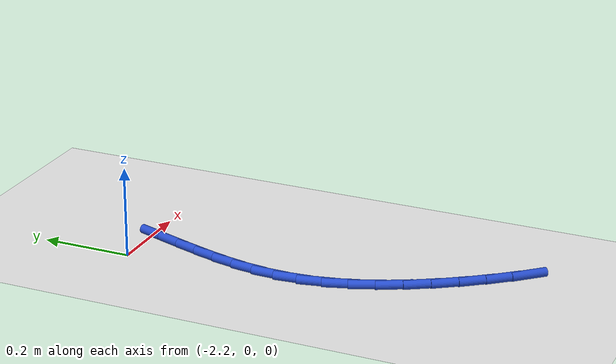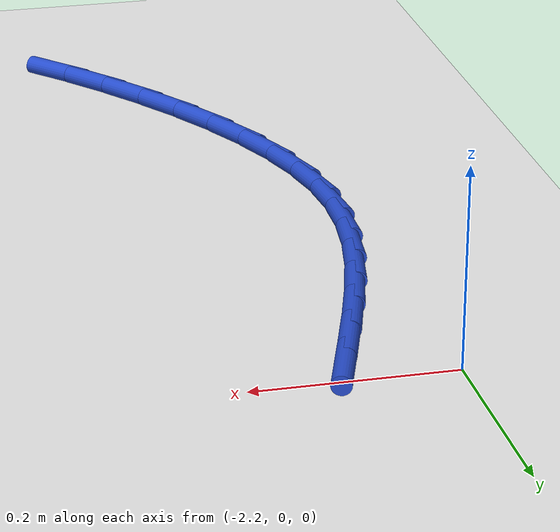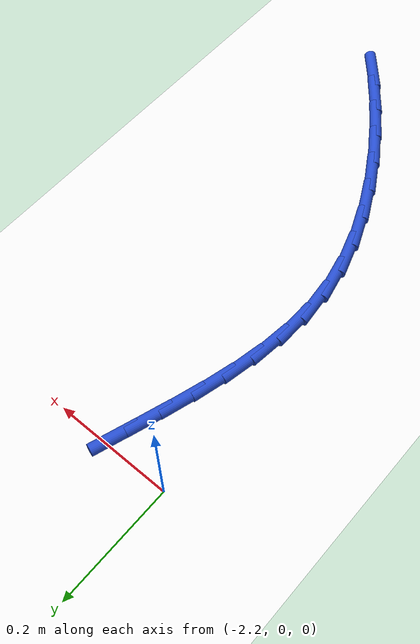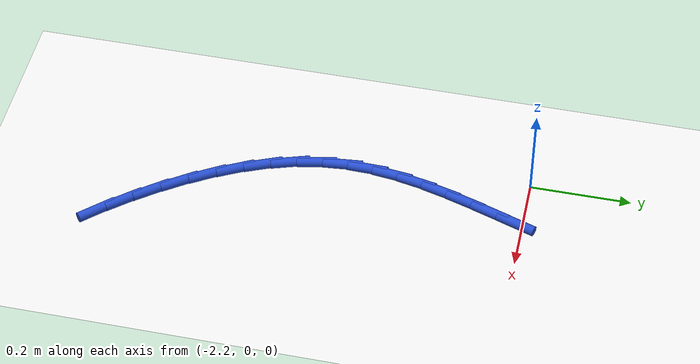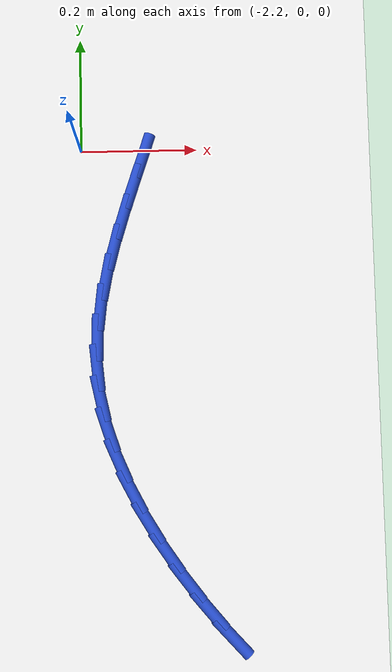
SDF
<sdf version="1.6">
 <world name="default">
  <model name="ground_plane">
   <static>1</static>
   <link name="link">
    <collision name="collision">
     <geometry><plane><normal>0 0 1</normal><size>100 100</size></plane></geometry>
     <surface><friction><ode><mu>100</mu><mu2>50</mu2></ode></friction></surface>
    </collision>
    <visual name="visual">
     <cast_shadows>0</cast_shadows>
     <geometry><plane><normal>0 0 1</normal><size>100 100</size></plane></geometry>
     <material>
      <script><uri>file://media/materials/scripts/gazebo.material</uri><name>Gazebo/WhiteGlow</name></script>
     </material>
    </visual>
   </link>
  </model>
  <model name="line">
   <link name="link_65">
    <pose>-2.0928868019216096 -0.012737811237829244 0.01 0 1.57 1.242376807196104</pose>
    <collision name="collision">
     <geometry><cylinder><radius>0.01</radius><length>0.08</length></cylinder></geometry>
    </collision>
    <visual name="visual">
     <material>
      <script><name>Gazebo/Blue</name><uri>file://media/materials/scripts/gazebo.material</uri></script>
     </material>
     <geometry><cylinder><radius>0.01</radius><length>0.08</length></cylinder></geometry>
    </visual>
   </link>
   <link name="link_66">
    <pose>-2.1111397505416107 -0.06630323331836988 0.01 0 1.57 1.2495280540960396</pose>
    <collision name="collision">
     <geometry><cylinder><radius>0.01</radius><length>0.08</length></cylinder></geometry>
    </collision>
    <visual name="visual">
     <material>
      <script><name>Gazebo/Blue</name><uri>file://media/materials/scripts/gazebo.material</uri></script>
     </material>
     <geometry><cylinder><radius>0.01</radius><length>0.08</length></cylinder></geometry>
    </visual>
   </link>
   <link name="link_67">
    <pose>-2.128653133441976 -0.11892796824958743 0.01 0 1.57 1.2732458492975594</pose>
    <collision name="collision">
     <geometry><cylinder><radius>0.01</radius><length>0.08</length></cylinder></geometry>
    </collision>
    <visual name="visual">
     <material>
      <script><name>Gazebo/Blue</name><uri>file://media/materials/scripts/gazebo.material</uri></script>
     </material>
     <geometry><cylinder><radius>0.01</radius><length>0.08</length></cylinder></geometry>
    </visual>
   </link>
   <link name="link_68">
    <pose>-2.1445675319920356 -0.1708248284813273 0.01 0 1.57 1.3146657433755573</pose>
    <collision name="collision">
     <geometry><cylinder><radius>0.01</radius><length>0.08</length></cylinder></geometry>
    </collision>
    <visual name="visual">
     <material>
      <script><name>Gazebo/Blue</name><uri>file://media/materials/scripts/gazebo.material</uri></script>
     </material>
     <geometry><cylinder><radius>0.01</radius><length>0.08</length></cylinder></geometry>
    </visual>
   </link>
   <link name="link_69">
    <pose>-2.158023527561118 -0.22220662646343703 0.01 0 1.57 1.3748645166518876</pose>
    <collision name="collision">
     <geometry><cylinder><radius>0.01</radius><length>0.08</length></cylinder></geometry>
    </collision>
    <visual name="visual">
     <material>
      <script><name>Gazebo/Blue</name><uri>file://media/materials/scripts/gazebo.material</uri></script>
     </material>
     <geometry><cylinder><radius>0.01</radius><length>0.08</length></cylinder></geometry>
    </visual>
   </link>
   <link name="link_70">
    <pose>-2.168161701518555 -0.2732861746457643 0.01 0 1.57 1.4544208347360172</pose>
    <collision name="collision">
     <geometry><cylinder><radius>0.01</radius><length>0.08</length></cylinder></geometry>
    </collision>
    <visual name="visual">
     <material>
      <script><name>Gazebo/Blue</name><uri>file://media/materials/scripts/gazebo.material</uri></script>
     </material>
     <geometry><cylinder><radius>0.01</radius><length>0.08</length></cylinder></geometry>
    </visual>
   </link>
   <link name="link_71">
    <pose>-2.1741226352336755 -0.3242762854781545 0.01 0 1.57 1.5527154993399657</pose>
    <collision name="collision">
     <geometry><cylinder><radius>0.01</radius><length>0.08</length></cylinder></geometry>
    </collision>
    <visual name="visual">
     <material>
      <script><name>Gazebo/Blue</name><uri>file://media/materials/scripts/gazebo.material</uri></script>
     </material>
     <geometry><cylinder><radius>0.01</radius><length>0.08</length></cylinder></geometry>
    </visual>
   </link>
   <link name="link_72">
    <pose>-2.17504691007581 -0.37538977141045515 0.01 0 1.57 -1.4744990056635785</pose>
    <collision name="collision">
     <geometry><cylinder><radius>0.01</radius><length>0.08</length></cylinder></geometry>
    </collision>
    <visual name="visual">
     <material>
      <script><name>Gazebo/Blue</name><uri>file://media/materials/scripts/gazebo.material</uri></script>
     </material>
     <geometry><cylinder><radius>0.01</radius><length>0.08</length></cylinder></geometry>
    </visual>
   </link>
   <link name="link_73">
    <pose>-2.1700771496355307 -0.4268386493123897 0.01 0 1.57 -1.356457337822943</pose>
    <collision name="collision">
     <geometry><cylinder><radius>0.01</radius><length>0.08</length></cylinder></geometry>
    </collision>
    <visual name="visual">
     <material>
      <script><name>Gazebo/Blue</name><uri>file://media/materials/scripts/gazebo.material</uri></script>
     </material>
     <geometry><cylinder><radius>0.01</radius><length>0.08</length></cylinder></geometry>
    </visual>
   </link>
   <link name="link_74">
    <pose>-2.158795746621738 -0.4786636169222672 0.01 0 1.57 -1.253564298124306</pose>
    <collision name="collision">
     <geometry><cylinder><radius>0.01</radius><length>0.08</length></cylinder></geometry>
    </collision>
    <visual name="visual">
     <material>
      <script><name>Gazebo/Blue</name><uri>file://media/materials/scripts/gazebo.material</uri></script>
     </material>
     <geometry><cylinder><radius>0.01</radius><length>0.08</length></cylinder></geometry>
    </visual>
   </link>
   <link name="link_75">
    <pose>-2.1417696464119285 -0.5305218236550014 0.01 0 1.57 -1.1659014968026502</pose>
    <collision name="collision">
     <geometry><cylinder><radius>0.01</radius><length>0.08</length></cylinder></geometry>
    </collision>
    <visual name="visual">
     <material>
      <script><name>Gazebo/Blue</name><uri>file://media/materials/scripts/gazebo.material</uri></script>
     </material>
     <geometry><cylinder><radius>0.01</radius><length>0.08</length></cylinder></geometry>
    </visual>
   </link>
   <link name="link_76">
    <pose>-2.1196995346207137 -0.5820183182656297 0.01 0 1.57 -1.090831504129126</pose>
    <collision name="collision">
     <geometry><cylinder><radius>0.01</radius><length>0.08</length></cylinder></geometry>
    </collision>
    <visual name="visual">
     <material>
      <script><name>Gazebo/Blue</name><uri>file://media/materials/scripts/gazebo.material</uri></script>
     </material>
     <geometry><cylinder><radius>0.01</radius><length>0.08</length></cylinder></geometry>
    </visual>
   </link>
   <link name="link_77">
    <pose>-2.0932860968627036 -0.6327581495091913 0.01 0 1.57 -1.025893866652874</pose>
    <collision name="collision">
     <geometry><cylinder><radius>0.01</radius><length>0.08</length></cylinder></geometry>
    </collision>
    <visual name="visual">
     <material>
      <script><name>Gazebo/Blue</name><uri>file://media/materials/scripts/gazebo.material</uri></script>
     </material>
     <geometry><cylinder><radius>0.01</radius><length>0.08</length></cylinder></geometry>
    </visual>
   </link>
   <link name="link_78">
    <pose>-2.063230018752506 -0.6823463661407259 0.01 0 1.57 -0.9689416543543974</pose>
    <collision name="collision">
     <geometry><cylinder><radius>0.01</radius><length>0.08</length></cylinder></geometry>
    </collision>
    <visual name="visual">
     <material>
      <script><name>Gazebo/Blue</name><uri>file://media/materials/scripts/gazebo.material</uri></script>
     </material>
     <geometry><cylinder><radius>0.01</radius><length>0.08</length></cylinder></geometry>
    </visual>
   </link>
   <link name="link_79">
    <pose>-2.030231985904733 -0.7303880169152703 0.01 0 1.57 -0.9181375303338281</pose>
    <collision name="collision">
     <geometry><cylinder><radius>0.01</radius><length>0.08</length></cylinder></geometry>
    </collision>
    <visual name="visual">
     <material>
      <script><name>Gazebo/Blue</name><uri>file://media/materials/scripts/gazebo.material</uri></script>
     </material>
     <geometry><cylinder><radius>0.01</radius><length>0.08</length></cylinder></geometry>
    </visual>
   </link>
   <link name="link_80">
    <pose>-1.9949926439187502 -0.7764881761059077 0.01 0 1.57 -0.8710161521488299</pose>
    <collision name="collision">
     <geometry><cylinder><radius>0.01</radius><length>0.08</length></cylinder></geometry>
    </collision>
    <visual name="visual">
     <material>
      <script><name>Gazebo/Blue</name><uri>file://media/materials/scripts/gazebo.material</uri></script>
     </material>
     <geometry><cylinder><radius>0.01</radius><length>0.08</length></cylinder></geometry>
    </visual>
   </link>
   <link name="link_81">
    <pose>-1.9580717563885228 -0.8203417595735397 0.01 0 1.57 -0.8240061513987059</pose>
    <collision name="collision">
     <geometry><cylinder><radius>0.01</radius><length>0.08</length></cylinder></geometry>
    </collision>
    <visual name="visual">
     <material>
      <script><name>Gazebo/Blue</name><uri>file://media/materials/scripts/gazebo.material</uri></script>
     </material>
     <geometry><cylinder><radius>0.01</radius><length>0.08</length></cylinder></geometry>
    </visual>
   </link>
  </model>
 </world>
</sdf>
